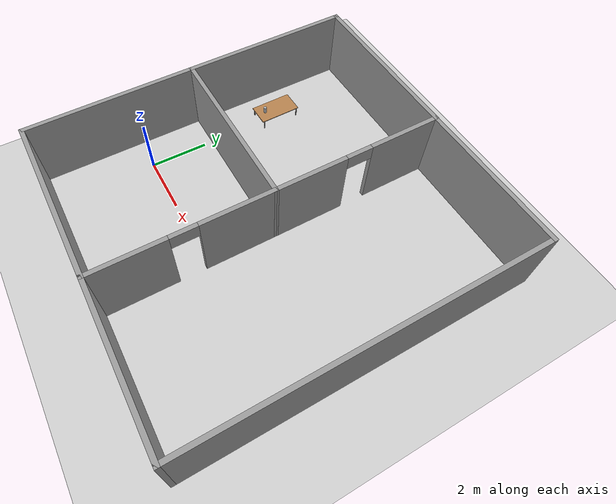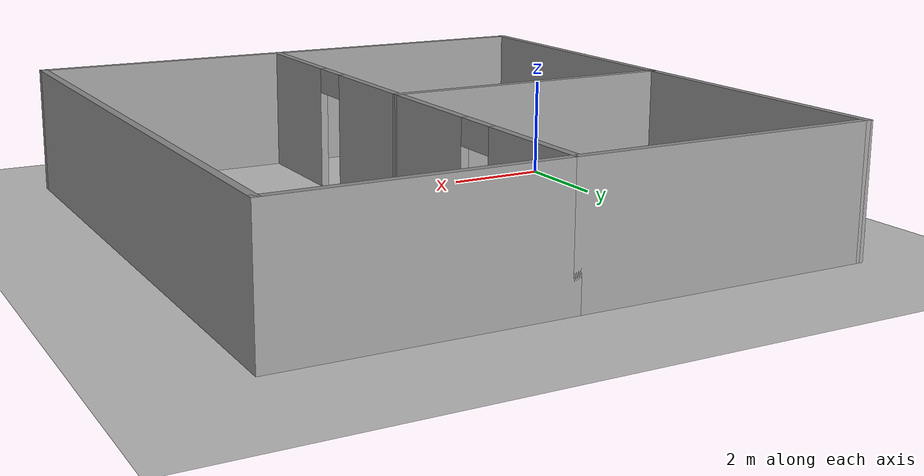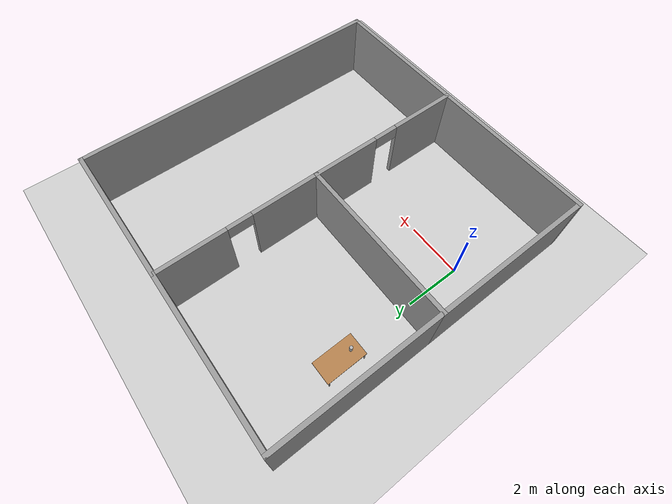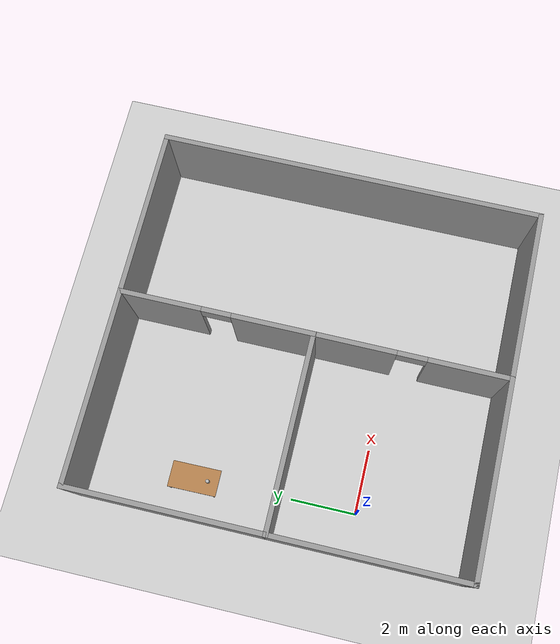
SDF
<sdf version="1.6">
 <world name="default">
  <light name="sun" type="directional">
   <pose>0 0 10 0 -0 0</pose>
   <diffuse>0.8 0.8 0.8 1</diffuse>
   <specular>0.2 0.2 0.2 1</specular>
   <attenuation>
    <range>1000</range>
    <constant>0.9</constant>
    <linear>0.01</linear>
    <quadratic>0.001</quadratic>
   </attenuation>
   <direction>-0.5 0.1 -0.9</direction>
  </light>
  <model name="ground_plane">
   <static>1</static>
   <link name="link">
    <collision name="collision">
     <geometry><plane><normal>0 0 1</normal><size>100 100</size></plane></geometry>
     <surface>
      <contact><collide_bitmask>65535</collide_bitmask></contact>
      <friction><ode><mu>100</mu><mu2>50</mu2></ode></friction>
     </surface>
    </collision>
    <visual name="visual">
     <cast_shadows>0</cast_shadows>
     <geometry><plane><normal>0 0 1</normal><size>100 100</size></plane></geometry>
     <material>
      <script><uri>file://media/materials/scripts/gazebo.material</uri><name>Gazebo/Grey</name></script>
     </material>
    </visual>
   </link>
  </model>
  <gravity>0 0 -9.8</gravity>
  <magnetic_field>6e-06 2.3e-05 -4.2e-05</magnetic_field>
  <atmosphere type="adiabatic"/>
  <physics name="default_physics" default="0" type="ode">
   <max_step_size>0.001</max_step_size>
   <real_time_factor>1</real_time_factor>
   <real_time_update_rate>1000</real_time_update_rate>
  </physics>
  <scene><ambient>0.4 0.4 0.4 1</ambient><background>0.7 0.7 0.7 1</background><shadows>1</shadows></scene>
  <spherical_coordinates>
   <surface_model>EARTH_WGS84</surface_model>
   <latitude_deg>0</latitude_deg>
   <longitude_deg>0</longitude_deg>
   <elevation>0</elevation>
   <heading_deg>0</heading_deg>
  </spherical_coordinates>
  <light name="user_point_light_0" type="point">
   <pose>4.12944 0.277426 1 0 -0 0</pose>
   <diffuse>0.5 0.5 0.5 1</diffuse>
   <specular>0.1 0.1 0.1 1</specular>
   <attenuation>
    <range>20</range>
    <constant>0.5</constant>
    <linear>0.01</linear>
    <quadratic>0.001</quadratic>
   </attenuation>
   <cast_shadows>0</cast_shadows>
   <direction>0 0 -1</direction>
  </light>
  <model name="RGB_room">
   <pose>4.24777 2.36231 0 0 -0 0</pose>
   <link name="Wall_1">
    <collision name="Wall_1_Collision">
     <geometry><box><size>5.98 0.15 2.5</size></box></geometry>
     <pose>0 0 1.25 0 -0 0</pose>
    </collision>
    <visual name="Wall_1_Visual">
     <pose>0 0 1.25 0 -0 0</pose>
     <geometry><box><size>5.98 0.15 2.5</size></box></geometry>
     <material>
      <script><uri>file://media/materials/scripts/gazebo.material</uri><name>Gazebo/Grey</name></script>
      <ambient>1 1 1 1</ambient>
     </material>
     <meta><layer>0</layer></meta>
    </visual>
    <pose>-2.585 -5.84987 0 0 -0 0</pose>
   </link>
   <link name="Wall_11">
    <collision name="Wall_11_Collision">
     <geometry><box><size>6 0.15 2.5</size></box></geometry>
     <pose>0 0 1.25 0 -0 0</pose>
    </collision>
    <visual name="Wall_11_Visual">
     <pose>0 0 1.25 0 -0 0</pose>
     <geometry><box><size>6 0.15 2.5</size></box></geometry>
     <material>
      <script><uri>file://media/materials/scripts/gazebo.material</uri><name>Gazebo/Grey</name></script>
      <ambient>1 1 1 1</ambient>
     </material>
     <meta><layer>0</layer></meta>
    </visual>
    <pose>-5.5 2.92513 0 0 -0 1.5708</pose>
   </link>
   <link name="Wall_12">
    <collision name="Wall_12_Collision">
     <geometry><box><size>6 0.15 2.5</size></box></geometry>
     <pose>0 0 1.25 0 -0 0</pose>
    </collision>
    <visual name="Wall_12_Visual">
     <pose>0 0 1.25 0 -0 0</pose>
     <geometry><box><size>6 0.15 2.5</size></box></geometry>
     <material>
      <script><uri>file://media/materials/scripts/gazebo.material</uri><name>Gazebo/Grey</name></script>
      <ambient>1 1 1 1</ambient>
     </material>
     <meta><layer>0</layer></meta>
    </visual>
    <pose>-2.575 5.85013 0 0 -0 0</pose>
   </link>
   <link name="Wall_14">
    <pose>0.34 -2.92487 0 0 0 -1.57421</pose>
    <visual name="Wall_14_Visual_0">
     <pose>-1.72481 0 1.25 0 -0 0</pose>
     <geometry><box><size>2.5504 0.15 2.5</size></box></geometry>
     <material>
      <script><uri>file://media/materials/scripts/gazebo.material</uri><name>Gazebo/Grey</name></script>
      <ambient>1 1 1 1</ambient>
     </material>
     <meta><layer>0</layer></meta>
    </visual>
    <collision name="Wall_14_Collision_0">
     <geometry><box><size>2.5504 0.15 2.5</size></box></geometry>
     <pose>-1.72481 0 1.25 0 -0 0</pose>
    </collision>
    <visual name="Wall_14_Visual_1">
     <pose>1.7252 0 1.25 0 -0 0</pose>
     <geometry><box><size>2.54963 0.15 2.5</size></box></geometry>
     <material>
      <script><uri>file://media/materials/scripts/gazebo.material</uri><name>Gazebo/Grey</name></script>
      <ambient>1 1 1 1</ambient>
     </material>
     <meta><layer>0</layer></meta>
    </visual>
    <collision name="Wall_14_Collision_1">
     <geometry><box><size>2.54963 0.15 2.5</size></box></geometry>
     <pose>1.7252 0 1.25 0 -0 0</pose>
    </collision>
    <visual name="Wall_14_Visual_2">
     <pose>0.000387 0 2.25 0 -0 0</pose>
     <geometry><box><size>0.9 0.15 0.5</size></box></geometry>
     <material>
      <script><uri>file://media/materials/scripts/gazebo.material</uri><name>Gazebo/Grey</name></script>
      <ambient>1 1 1 1</ambient>
     </material>
     <meta><layer>0</layer></meta>
    </visual>
    <collision name="Wall_14_Collision_2">
     <geometry><box><size>0.9 0.15 0.5</size></box></geometry>
     <pose>0.000387 0 2.25 0 -0 0</pose>
    </collision>
   </link>
   <link name="Wall_16">
    <collision name="Wall_16_Collision">
     <geometry><box><size>5.32 0.15 2.5</size></box></geometry>
     <pose>0 0 1.25 0 -0 0</pose>
    </collision>
    <visual name="Wall_16_Visual">
     <pose>0 0 1.25 0 -0 0</pose>
     <geometry><box><size>5.32 0.15 2.5</size></box></geometry>
     <material>
      <script><uri>file://media/materials/scripts/gazebo.material</uri><name>Gazebo/Grey</name></script>
      <ambient>1 1 1 1</ambient>
     </material>
     <meta><layer>0</layer></meta>
    </visual>
    <pose>2.915 -5.84987 0 0 -0 0</pose>
   </link>
   <link name="Wall_19">
    <pose>0.35 2.92513 0 0 0 -1.5708</pose>
    <visual name="Wall_19_Visual_0">
     <pose>-1.72814 0 1.25 0 -0 0</pose>
     <geometry><box><size>2.54371 0.15 2.5</size></box></geometry>
     <material>
      <script><uri>file://media/materials/scripts/gazebo.material</uri><name>Gazebo/Grey</name></script>
      <ambient>1 1 1 1</ambient>
     </material>
     <meta><layer>0</layer></meta>
    </visual>
    <collision name="Wall_19_Collision_0">
     <geometry><box><size>2.54371 0.15 2.5</size></box></geometry>
     <pose>-1.72814 0 1.25 0 -0 0</pose>
    </collision>
    <visual name="Wall_19_Visual_1">
     <pose>1.72186 0 1.25 0 -0 0</pose>
     <geometry><box><size>2.55629 0.15 2.5</size></box></geometry>
     <material>
      <script><uri>file://media/materials/scripts/gazebo.material</uri><name>Gazebo/Grey</name></script>
      <ambient>1 1 1 1</ambient>
     </material>
     <meta><layer>0</layer></meta>
    </visual>
    <collision name="Wall_19_Collision_1">
     <geometry><box><size>2.55629 0.15 2.5</size></box></geometry>
     <pose>1.72186 0 1.25 0 -0 0</pose>
    </collision>
    <visual name="Wall_19_Visual_2">
     <pose>-0.006289 0 2.25 0 -0 0</pose>
     <geometry><box><size>0.9 0.15 0.5</size></box></geometry>
     <material>
      <script><uri>file://media/materials/scripts/gazebo.material</uri><name>Gazebo/Grey</name></script>
      <ambient>1 1 1 1</ambient>
     </material>
     <meta><layer>0</layer></meta>
    </visual>
    <collision name="Wall_19_Collision_2">
     <geometry><box><size>0.9 0.15 0.5</size></box></geometry>
     <pose>-0.006289 0 2.25 0 -0 0</pose>
    </collision>
   </link>
   <link name="Wall_24">
    <collision name="Wall_24_Collision">
     <geometry><box><size>5.3 0.15 2.5</size></box></geometry>
     <pose>0 0 1.25 0 -0 0</pose>
    </collision>
    <visual name="Wall_24_Visual">
     <pose>0 0 1.25 0 -0 0</pose>
     <geometry><box><size>5.3 0.15 2.5</size></box></geometry>
     <material>
      <script><uri>file://media/materials/scripts/gazebo.material</uri><name>Gazebo/Grey</name></script>
      <ambient>1 1 1 1</ambient>
     </material>
     <meta><layer>0</layer></meta>
    </visual>
    <pose>2.925 5.85013 0 0 -0 0</pose>
   </link>
   <link name="Wall_27">
    <collision name="Wall_27_Collision">
     <geometry><box><size>11.85 0.15 2.5</size></box></geometry>
     <pose>0 0 1.25 0 -0 0</pose>
    </collision>
    <visual name="Wall_27_Visual">
     <pose>0 0 1.25 0 -0 0</pose>
     <geometry><box><size>11.85 0.15 2.5</size></box></geometry>
     <material>
      <script><uri>file://media/materials/scripts/gazebo.material</uri><name>Gazebo/Grey</name></script>
      <ambient>1 1 1 1</ambient>
     </material>
     <meta><layer>0</layer></meta>
    </visual>
    <pose>5.5 0.000127 0 0 0 -1.5708</pose>
   </link>
   <link name="Wall_3">
    <collision name="Wall_3_Collision">
     <geometry><box><size>6 0.15 2.5</size></box></geometry>
     <pose>0 0 1.25 0 -0 0</pose>
    </collision>
    <visual name="Wall_3_Visual">
     <pose>0 0 1.25 0 -0 0</pose>
     <geometry><box><size>6 0.15 2.5</size></box></geometry>
     <material>
      <script><uri>file://media/materials/scripts/gazebo.material</uri><name>Gazebo/Grey</name></script>
      <ambient>1 1 1 1</ambient>
     </material>
     <meta><layer>0</layer></meta>
    </visual>
    <pose>-5.5 -2.92487 0 0 -0 1.5708</pose>
   </link>
   <link name="Wall_4">
    <collision name="Wall_4_Collision">
     <geometry><box><size>6 0.15 2.5</size></box></geometry>
     <pose>0 0 1.25 0 -0 0</pose>
    </collision>
    <visual name="Wall_4_Visual">
     <pose>0 0 1.25 0 -0 0</pose>
     <geometry><box><size>6 0.15 2.5</size></box></geometry>
     <material>
      <script><uri>file://media/materials/scripts/gazebo.material</uri><name>Gazebo/Grey</name></script>
      <ambient>1 1 1 1</ambient>
     </material>
     <meta><layer>0</layer></meta>
    </visual>
    <pose>-2.575 0.000127 0 0 -0 0</pose>
   </link>
   <static>1</static>
  </model>
  <model name="table">
   <static>1</static>
   <link name="link">
    <collision name="surface">
     <pose>0 0 1 0 -0 0</pose>
     <geometry><box><size>1.5 0.8 0.03</size></box></geometry>
     <surface><friction><ode><mu>0.6</mu><mu2>0.6</mu2></ode></friction></surface>
    </collision>
    <visual name="visual1">
     <pose>0 0 1 0 -0 0</pose>
     <geometry><box><size>1.5 0.8 0.03</size></box></geometry>
     <material>
      <script><uri>file://media/materials/scripts/gazebo.material</uri><name>Gazebo/Wood</name></script>
     </material>
    </visual>
    <collision name="front_left_leg">
     <pose>0.68 0.38 0.5 0 -0 0</pose>
     <geometry><cylinder><radius>0.02</radius><length>1</length></cylinder></geometry>
    </collision>
    <visual name="front_left_leg">
     <pose>0.68 0.38 0.5 0 -0 0</pose>
     <geometry><cylinder><radius>0.02</radius><length>1</length></cylinder></geometry>
     <material>
      <script><uri>file://media/materials/scripts/gazebo.material</uri><name>Gazebo/Grey</name></script>
     </material>
    </visual>
    <collision name="front_right_leg">
     <pose>0.68 -0.38 0.5 0 -0 0</pose>
     <geometry><cylinder><radius>0.02</radius><length>1</length></cylinder></geometry>
    </collision>
    <visual name="front_right_leg">
     <pose>0.68 -0.38 0.5 0 -0 0</pose>
     <geometry><cylinder><radius>0.02</radius><length>1</length></cylinder></geometry>
     <material>
      <script><uri>file://media/materials/scripts/gazebo.material</uri><name>Gazebo/Grey</name></script>
     </material>
    </visual>
    <collision name="back_right_leg">
     <pose>-0.68 -0.38 0.5 0 -0 0</pose>
     <geometry><cylinder><radius>0.02</radius><length>1</length></cylinder></geometry>
    </collision>
    <visual name="back_right_leg">
     <pose>-0.68 -0.38 0.5 0 -0 0</pose>
     <geometry><cylinder><radius>0.02</radius><length>1</length></cylinder></geometry>
     <material>
      <script><uri>file://media/materials/scripts/gazebo.material</uri><name>Gazebo/Grey</name></script>
     </material>
    </visual>
    <collision name="back_left_leg">
     <pose>-0.68 0.38 0.5 0 -0 0</pose>
     <geometry><cylinder><radius>0.02</radius><length>1</length></cylinder></geometry>
    </collision>
    <visual name="back_left_leg">
     <pose>-0.68 0.38 0.5 0 -0 0</pose>
     <geometry><cylinder><radius>0.02</radius><length>1</length></cylinder></geometry>
     <material>
      <script><uri>file://media/materials/scripts/gazebo.material</uri><name>Gazebo/Grey</name></script>
     </material>
    </visual>
   </link>
   <pose>-0.064793 4.99219 -0.658686 0 -0 1.58</pose>
  </model>
  <model name="beer">
   <link name="link">
    <pose>0 0 0.115 0 -0 0</pose>
    <inertial>
     <mass>0.39</mass>
     <inertia><ixx>0.00058</ixx><ixy>0</ixy><ixz>0</ixz><iyy>0.00058</iyy><iyz>0</iyz><izz>0.00019</izz></inertia>
    </inertial>
    <collision name="collision">
     <geometry><cylinder><radius>0.055</radius><length>0.23</length></cylinder></geometry>
    </collision>
    <visual name="visual">
     <geometry><cylinder><radius>0.055</radius><length>0.23</length></cylinder></geometry>
     <material>
      <script>
       <uri>model://beer/materials/scripts</uri>
       <uri>model://beer/materials/textures</uri>
       <name>Beer/Diffuse</name>
      </script>
     </material>
    </visual>
   </link>
   <pose>-0.06839 4.55849 0.356315 -1.5e-05 -5e-06 0.000849</pose>
  </model>
 </world>
</sdf>
